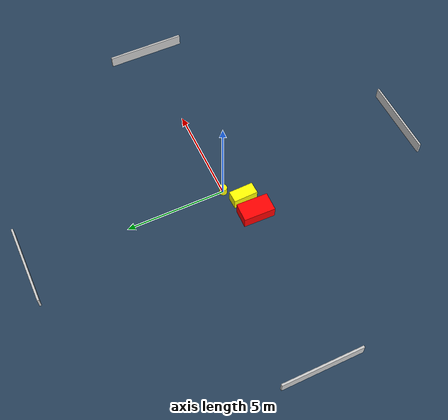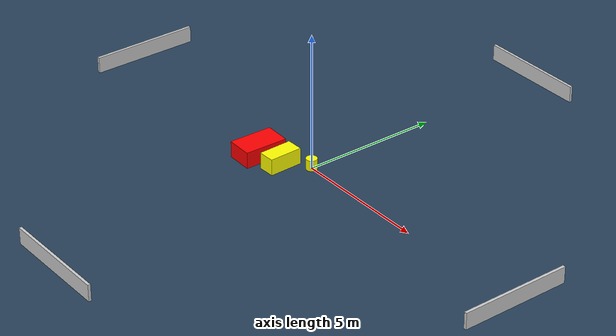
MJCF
<?xml version="1.0" ?>
<mujoco model="generated_environment">
  <option timestep="0.01" integrator="RK4" cone="elliptic"/>
  <default>
    <geom density="1"/>
  </default>
  <asset>
    <texture builtin="gradient" height="3072" name="skybox" rgb1="0.3 0.5 0.7" rgb2="0 0 0" type="skybox" width="512"/>
    <texture builtin="checker" height="300" name="groundplane" rgb1="0.2 0.3 0.4" rgb2="0.1 0.2 0.3" type="2d" width="300"/>
    <material name="groundplane" reflectance="0.2" texrepeat="5 5" texture="groundplane"/>
  </asset>
  <worldbody>
    <light dir="0 0 -1" directional="true" pos="0 0 1.5"/>
    <geom condim="3" friction="0.5 0.005 0.001" material="groundplane" name="floor" pos="0 0 0" size="0 0 0.05" type="plane"/>
    <body name="walls">
      <geom name="wall_1" condim="4" pos="-10.0 0.0 0.3" rgba="0.800000011920929 0.800000011920929 0.800000011920929 1.0" size="0.05 2.0 0.3" type="box"/>
      <geom name="wall_2" condim="4" pos="10.0 0.0 0.3" rgba="0.800000011920929 0.800000011920929 0.800000011920929 1.0" size="0.05 2.0 0.3" type="box"/>
      <geom name="wall_3" condim="4" pos="0.0 -10.0 0.3" rgba="0.800000011920929 0.800000011920929 0.800000011920929 1.0" size="2.0 0.05 0.3" type="box"/>
      <geom name="wall_4" condim="4" pos="0.0 10.0 0.3" rgba="0.800000011920929 0.800000011920929 0.800000011920929 1.0" size="2.0 0.05 0.3" type="box"/>
    </body>
    <body name="robot">
      <joint name="joint_x" type="slide" pos="0 0 0" axis="1 0 0"/>
      <joint name="joint_y" type="slide" pos="0 0 0" axis="0 1 0"/>
      <geom name="robot" type="cylinder" pos="0.0 0.0 0.2" size="0.2 0.2 0.0" mass="5.0" friction="1.0 0.005 0.0001" condim="4" rgba="1.0 1.0 0.0 1.0"/>
    </body>
    <body name="obstacle_1_movable">
      <geom name="obstacle_1_movable" condim="4" pos="-0.7687259139206677 -0.7211712073937324 0.3" euler="0 0 91.4933580851417" friction="0.0 0.005 0.001" rgba="1.0 1.0 0.0 1.0" size="0.612747741248375 0.30058373017451023 0.3" type="box" mass="0.1"/>
      <joint type="free"/>
    </body>
    <body name="obstacle_2_static">
      <geom name="obstacle_2_static" condim="4" pos="-1.7647865280219153 -0.9012357830344282 0.3" euler="0 0 178.56406134238355" friction="0.0 0.005 0.001" rgba="1.0 0.0 0.0 1.0" size="0.4753721222628085 0.7957619940397451 0.3" type="box"/>
    </body>
  </worldbody>
  <actuator>
    <motor name="actuator_x" joint="joint_x" gear="1" ctrlrange="-1 1"/>
    <motor name="actuator_y" joint="joint_y" gear="1" ctrlrange="-1 1"/>
  </actuator>
</mujoco>
